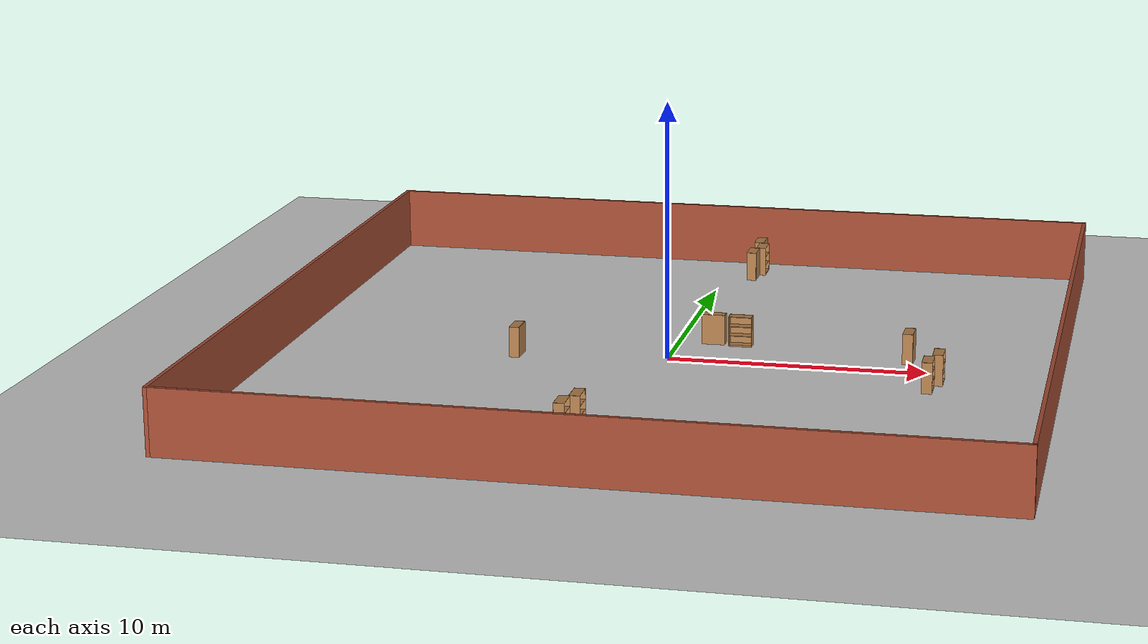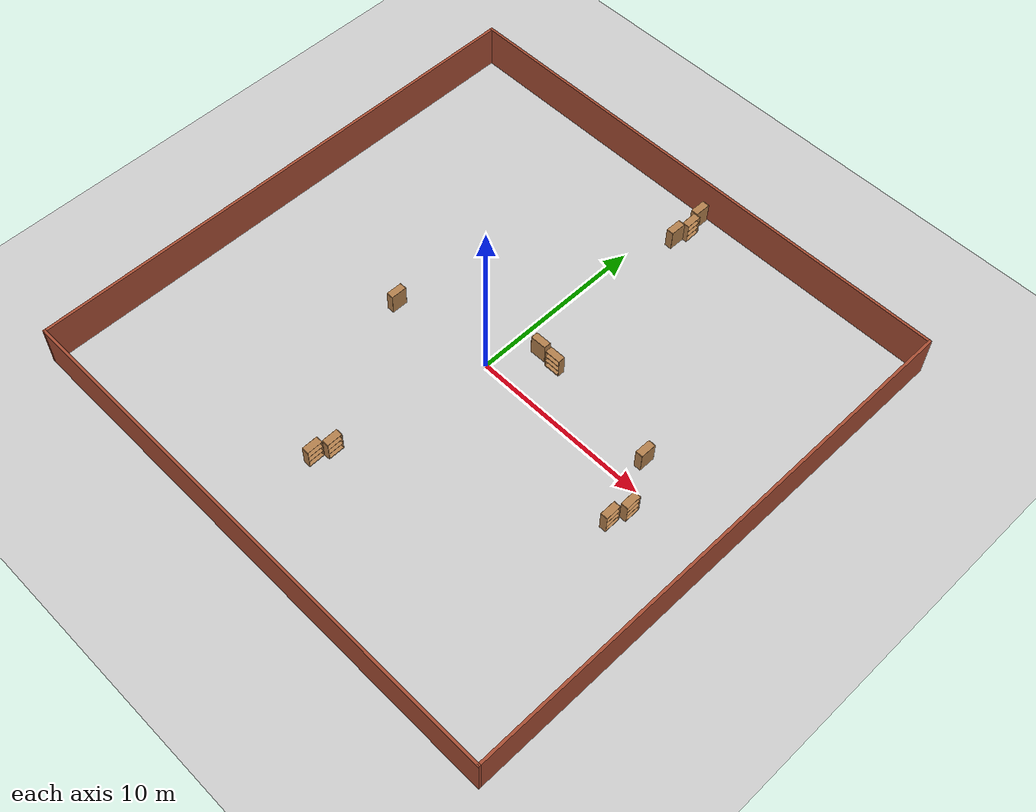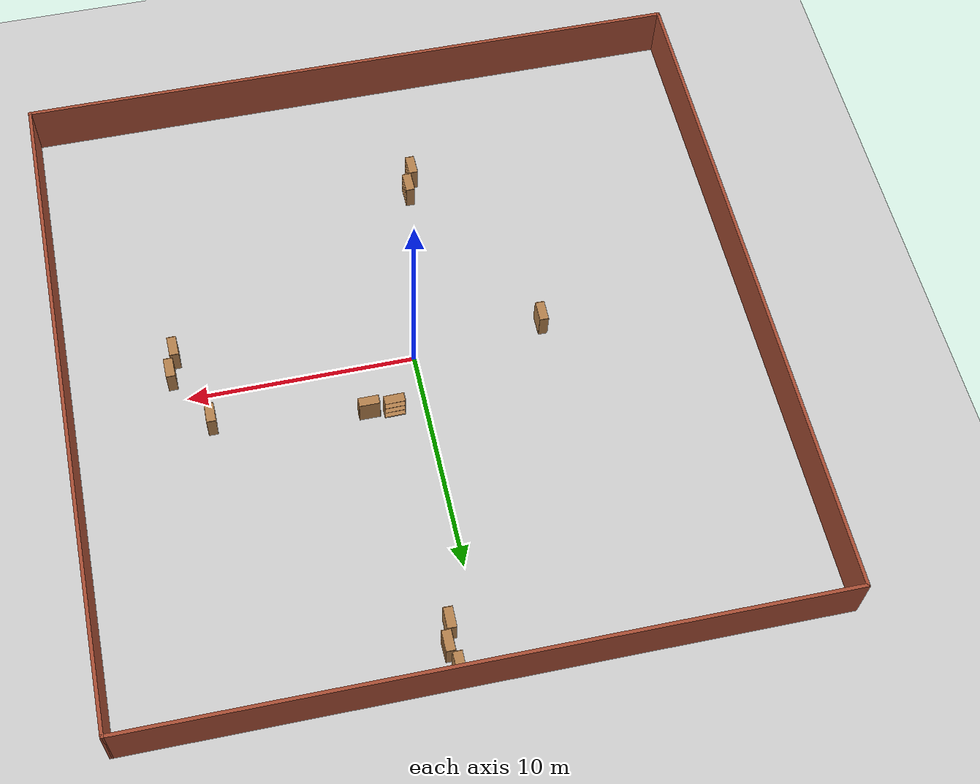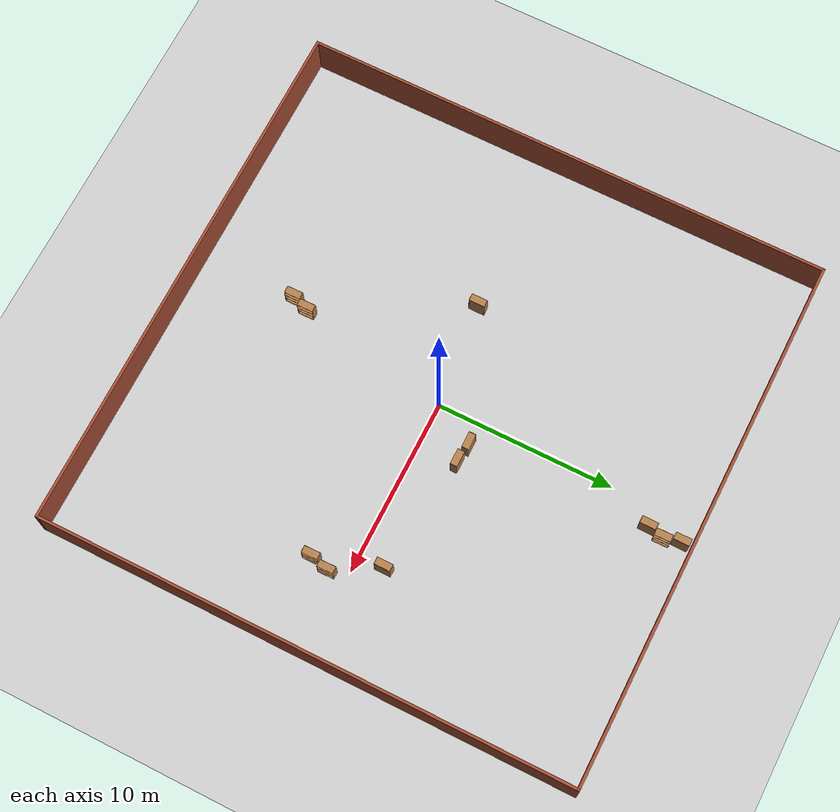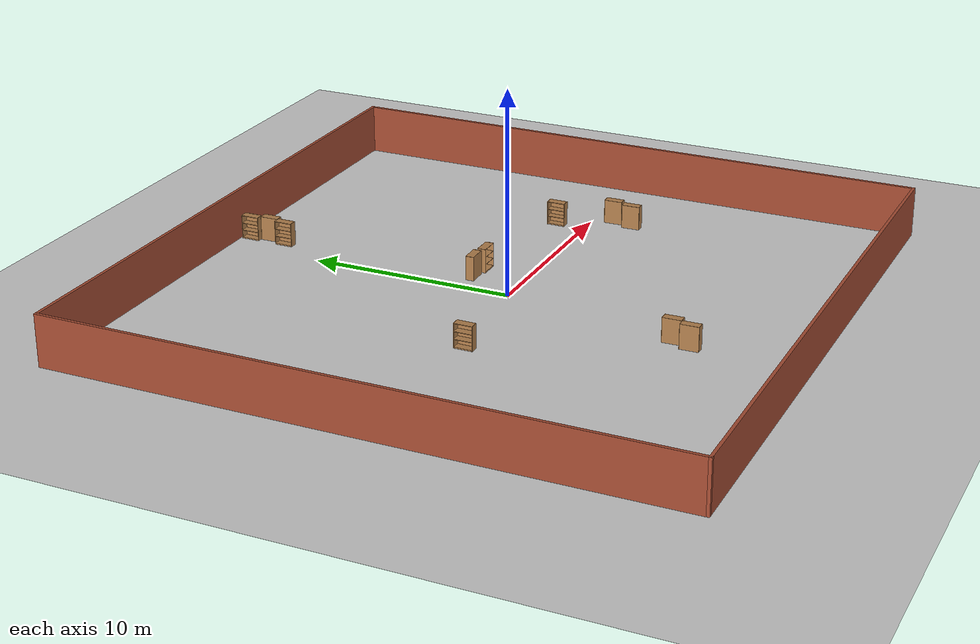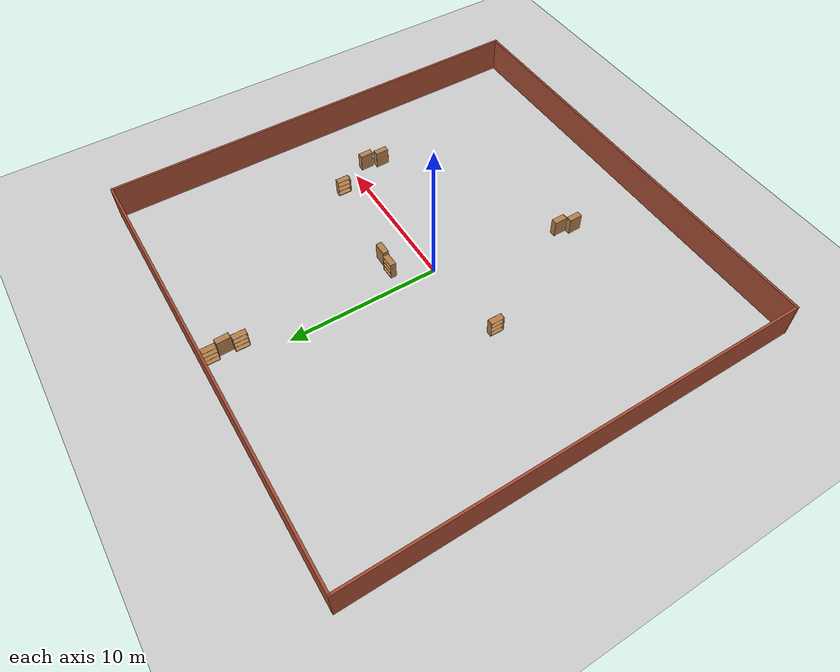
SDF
<sdf version="1.6">
 <world name="default">
  <model name="ground_plane">
   <static>1</static>
   <link name="link">
    <collision name="collision">
     <geometry><plane><normal>0 0 1</normal><size>100 100</size></plane></geometry>
     <surface>
      <contact><collide_bitmask>65535</collide_bitmask></contact>
      <friction><ode><mu>100</mu><mu2>50</mu2></ode></friction>
     </surface>
    </collision>
    <visual name="visual">
     <cast_shadows>0</cast_shadows>
     <geometry><plane><normal>0 0 1</normal><size>100 100</size></plane></geometry>
     <material>
      <script><uri>file://media/materials/scripts/gazebo.material</uri><name>Gazebo/Grey</name></script>
     </material>
    </visual>
   </link>
  </model>
  <model name="30x30_0">
   <link name="Wall_0">
    <collision name="Wall_0_Collision">
     <geometry><box><size>30.15 0.15 2.5</size></box></geometry>
     <pose>0 0 1.25 0 -0 0</pose>
    </collision>
    <visual name="Wall_0_Visual">
     <pose>0 0 1.25 0 -0 0</pose>
     <geometry><box><size>30.15 0.15 2.5</size></box></geometry>
     <material>
      <script><uri>file://media/materials/scripts/gazebo.material</uri><name>Gazebo/Bricks</name></script>
      <ambient>1 1 1 1</ambient>
     </material>
     <meta><layer>0</layer></meta>
    </visual>
    <pose>-15 0 0 0 -0 1.5708</pose>
   </link>
   <link name="Wall_1">
    <collision name="Wall_1_Collision">
     <geometry><box><size>30.15 0.15 2.5</size></box></geometry>
     <pose>0 0 1.25 0 -0 0</pose>
    </collision>
    <visual name="Wall_1_Visual">
     <pose>0 0 1.25 0 -0 0</pose>
     <geometry><box><size>30.15 0.15 2.5</size></box></geometry>
     <material>
      <script><uri>file://media/materials/scripts/gazebo.material</uri><name>Gazebo/Bricks</name></script>
      <ambient>1 1 1 1</ambient>
     </material>
     <meta><layer>0</layer></meta>
    </visual>
    <pose>0 15 0 0 -0 0</pose>
   </link>
   <link name="Wall_2">
    <collision name="Wall_2_Collision">
     <geometry><box><size>30.15 0.15 2.5</size></box></geometry>
     <pose>0 0 1.25 0 -0 0</pose>
    </collision>
    <visual name="Wall_2_Visual">
     <pose>0 0 1.25 0 -0 0</pose>
     <geometry><box><size>30.15 0.15 2.5</size></box></geometry>
     <material>
      <script><uri>file://media/materials/scripts/gazebo.material</uri><name>Gazebo/Bricks</name></script>
      <ambient>1 1 1 1</ambient>
     </material>
     <meta><layer>0</layer></meta>
    </visual>
    <pose>15 0 0 0 -0 -1.5708</pose>
   </link>
   <link name="Wall_3">
    <collision name="Wall_3_Collision">
     <geometry><box><size>30.15 0.15 2.5</size></box></geometry>
     <pose>0 0 1.25 0 -0 0</pose>
    </collision>
    <visual name="Wall_3_Visual">
     <pose>0 0 1.25 0 -0 0</pose>
     <geometry><box><size>30.15 0.15 2.5</size></box></geometry>
     <material>
      <script><uri>file://media/materials/scripts/gazebo.material</uri><name>Gazebo/Bricks</name></script>
      <ambient>1 1 1 1</ambient>
     </material>
     <meta><layer>0</layer></meta>
    </visual>
    <pose>0 -15 0 0 -0 3.14159</pose>
   </link>
   <static>1</static>
  </model>
  <model name="bookshelf_clone_0_clone_clone_2_clone_2_clone_3_clone_clone_clone_2_clone_0">
   <static>1</static>
   <link name="link">
    <inertial><mass>1</mass></inertial>
    <collision name="back">
     <pose>0 0.005 0.6 0 -0 0</pose>
     <geometry><box><size>0.9 0.01 1.2</size></box></geometry>
    </collision>
    <visual name="visual1">
     <pose>0 0.005 0.6 0 -0 0</pose>
     <geometry><box><size>0.9 0.01 1.2</size></box></geometry>
     <material>
      <script><uri>file://media/materials/scripts/gazebo.material</uri><name>Gazebo/Wood</name></script>
     </material>
    </visual>
    <collision name="left_side">
     <pose>0.45 -0.195 0.6 0 -0 0</pose>
     <geometry><box><size>0.02 0.4 1.2</size></box></geometry>
    </collision>
    <visual name="visual2">
     <pose>0.45 -0.195 0.6 0 -0 0</pose>
     <geometry><box><size>0.02 0.4 1.2</size></box></geometry>
     <material>
      <script><uri>file://media/materials/scripts/gazebo.material</uri><name>Gazebo/Wood</name></script>
     </material>
    </visual>
    <collision name="right_side">
     <pose>-0.45 -0.195 0.6 0 -0 0</pose>
     <geometry><box><size>0.02 0.4 1.2</size></box></geometry>
    </collision>
    <visual name="visual3">
     <pose>-0.45 -0.195 0.6 0 -0 0</pose>
     <geometry><box><size>0.02 0.4 1.2</size></box></geometry>
     <material>
      <script><uri>file://media/materials/scripts/gazebo.material</uri><name>Gazebo/Wood</name></script>
     </material>
    </visual>
    <collision name="bottom">
     <pose>0 -0.195 0.03 0 -0 0</pose>
     <geometry><box><size>0.88 0.4 0.06</size></box></geometry>
    </collision>
    <visual name="visual4">
     <pose>0 -0.195 0.03 0 -0 0</pose>
     <geometry><box><size>0.88 0.4 0.06</size></box></geometry>
     <material>
      <script><uri>file://media/materials/scripts/gazebo.material</uri><name>Gazebo/Wood</name></script>
     </material>
    </visual>
    <collision name="top">
     <pose>0 -0.195 1.19 0 -0 0</pose>
     <geometry><box><size>0.88 0.4 0.02</size></box></geometry>
    </collision>
    <visual name="visual5">
     <pose>0 -0.195 1.19 0 -0 0</pose>
     <geometry><box><size>0.88 0.4 0.02</size></box></geometry>
     <material>
      <script><uri>file://media/materials/scripts/gazebo.material</uri><name>Gazebo/Wood</name></script>
     </material>
    </visual>
    <collision name="low_shelf">
     <pose>0 -0.195 0.43 0 -0 0</pose>
     <geometry><box><size>0.88 0.4 0.02</size></box></geometry>
    </collision>
    <visual name="visual6">
     <pose>0 -0.195 0.43 0 -0 0</pose>
     <geometry><box><size>0.88 0.4 0.02</size></box></geometry>
     <material>
      <script><uri>file://media/materials/scripts/gazebo.material</uri><name>Gazebo/Wood</name></script>
     </material>
    </visual>
    <collision name="high_shelf">
     <pose>0 -0.195 0.8 0 -0 0</pose>
     <geometry><box><size>0.88 0.4 0.02</size></box></geometry>
    </collision>
    <visual name="visual7">
     <pose>0 -0.195 0.8 0 -0 0</pose>
     <geometry><box><size>0.88 0.4 0.02</size></box></geometry>
     <material>
      <script><uri>file://media/materials/scripts/gazebo.material</uri><name>Gazebo/Wood</name></script>
     </material>
    </visual>
   </link>
   <pose>10.3381 -1.05473 0 0 -0 1.58577</pose>
  </model>
  <model name="bookshelf_clone_0_clone_clone_2_clone_2_clone_3_clone_clone_clone_2_clone_1">
   <static>1</static>
   <link name="link">
    <inertial><mass>1</mass></inertial>
    <collision name="back">
     <pose>0 0.005 0.6 0 -0 0</pose>
     <geometry><box><size>0.9 0.01 1.2</size></box></geometry>
    </collision>
    <visual name="visual1">
     <pose>0 0.005 0.6 0 -0 0</pose>
     <geometry><box><size>0.9 0.01 1.2</size></box></geometry>
     <material>
      <script><uri>file://media/materials/scripts/gazebo.material</uri><name>Gazebo/Wood</name></script>
     </material>
    </visual>
    <collision name="left_side">
     <pose>0.45 -0.195 0.6 0 -0 0</pose>
     <geometry><box><size>0.02 0.4 1.2</size></box></geometry>
    </collision>
    <visual name="visual2">
     <pose>0.45 -0.195 0.6 0 -0 0</pose>
     <geometry><box><size>0.02 0.4 1.2</size></box></geometry>
     <material>
      <script><uri>file://media/materials/scripts/gazebo.material</uri><name>Gazebo/Wood</name></script>
     </material>
    </visual>
    <collision name="right_side">
     <pose>-0.45 -0.195 0.6 0 -0 0</pose>
     <geometry><box><size>0.02 0.4 1.2</size></box></geometry>
    </collision>
    <visual name="visual3">
     <pose>-0.45 -0.195 0.6 0 -0 0</pose>
     <geometry><box><size>0.02 0.4 1.2</size></box></geometry>
     <material>
      <script><uri>file://media/materials/scripts/gazebo.material</uri><name>Gazebo/Wood</name></script>
     </material>
    </visual>
    <collision name="bottom">
     <pose>0 -0.195 0.03 0 -0 0</pose>
     <geometry><box><size>0.88 0.4 0.06</size></box></geometry>
    </collision>
    <visual name="visual4">
     <pose>0 -0.195 0.03 0 -0 0</pose>
     <geometry><box><size>0.88 0.4 0.06</size></box></geometry>
     <material>
      <script><uri>file://media/materials/scripts/gazebo.material</uri><name>Gazebo/Wood</name></script>
     </material>
    </visual>
    <collision name="top">
     <pose>0 -0.195 1.19 0 -0 0</pose>
     <geometry><box><size>0.88 0.4 0.02</size></box></geometry>
    </collision>
    <visual name="visual5">
     <pose>0 -0.195 1.19 0 -0 0</pose>
     <geometry><box><size>0.88 0.4 0.02</size></box></geometry>
     <material>
      <script><uri>file://media/materials/scripts/gazebo.material</uri><name>Gazebo/Wood</name></script>
     </material>
    </visual>
    <collision name="low_shelf">
     <pose>0 -0.195 0.43 0 -0 0</pose>
     <geometry><box><size>0.88 0.4 0.02</size></box></geometry>
    </collision>
    <visual name="visual6">
     <pose>0 -0.195 0.43 0 -0 0</pose>
     <geometry><box><size>0.88 0.4 0.02</size></box></geometry>
     <material>
      <script><uri>file://media/materials/scripts/gazebo.material</uri><name>Gazebo/Wood</name></script>
     </material>
    </visual>
    <collision name="high_shelf">
     <pose>0 -0.195 0.8 0 -0 0</pose>
     <geometry><box><size>0.88 0.4 0.02</size></box></geometry>
    </collision>
    <visual name="visual7">
     <pose>0 -0.195 0.8 0 -0 0</pose>
     <geometry><box><size>0.88 0.4 0.02</size></box></geometry>
     <material>
      <script><uri>file://media/materials/scripts/gazebo.material</uri><name>Gazebo/Wood</name></script>
     </material>
    </visual>
   </link>
   <pose>10.0552 -2.09607 0 0 -0 1.58577</pose>
  </model>
  <model name="bookshelf_clone_0_clone_clone_2_clone_2_clone_3_clone_clone_2_clone">
   <static>1</static>
   <link name="link">
    <inertial><mass>1</mass></inertial>
    <collision name="back">
     <pose>0 0.005 0.6 0 -0 0</pose>
     <geometry><box><size>0.9 0.01 1.2</size></box></geometry>
    </collision>
    <visual name="visual1">
     <pose>0 0.005 0.6 0 -0 0</pose>
     <geometry><box><size>0.9 0.01 1.2</size></box></geometry>
     <material>
      <script><uri>file://media/materials/scripts/gazebo.material</uri><name>Gazebo/Wood</name></script>
     </material>
    </visual>
    <collision name="left_side">
     <pose>0.45 -0.195 0.6 0 -0 0</pose>
     <geometry><box><size>0.02 0.4 1.2</size></box></geometry>
    </collision>
    <visual name="visual2">
     <pose>0.45 -0.195 0.6 0 -0 0</pose>
     <geometry><box><size>0.02 0.4 1.2</size></box></geometry>
     <material>
      <script><uri>file://media/materials/scripts/gazebo.material</uri><name>Gazebo/Wood</name></script>
     </material>
    </visual>
    <collision name="right_side">
     <pose>-0.45 -0.195 0.6 0 -0 0</pose>
     <geometry><box><size>0.02 0.4 1.2</size></box></geometry>
    </collision>
    <visual name="visual3">
     <pose>-0.45 -0.195 0.6 0 -0 0</pose>
     <geometry><box><size>0.02 0.4 1.2</size></box></geometry>
     <material>
      <script><uri>file://media/materials/scripts/gazebo.material</uri><name>Gazebo/Wood</name></script>
     </material>
    </visual>
    <collision name="bottom">
     <pose>0 -0.195 0.03 0 -0 0</pose>
     <geometry><box><size>0.88 0.4 0.06</size></box></geometry>
    </collision>
    <visual name="visual4">
     <pose>0 -0.195 0.03 0 -0 0</pose>
     <geometry><box><size>0.88 0.4 0.06</size></box></geometry>
     <material>
      <script><uri>file://media/materials/scripts/gazebo.material</uri><name>Gazebo/Wood</name></script>
     </material>
    </visual>
    <collision name="top">
     <pose>0 -0.195 1.19 0 -0 0</pose>
     <geometry><box><size>0.88 0.4 0.02</size></box></geometry>
    </collision>
    <visual name="visual5">
     <pose>0 -0.195 1.19 0 -0 0</pose>
     <geometry><box><size>0.88 0.4 0.02</size></box></geometry>
     <material>
      <script><uri>file://media/materials/scripts/gazebo.material</uri><name>Gazebo/Wood</name></script>
     </material>
    </visual>
    <collision name="low_shelf">
     <pose>0 -0.195 0.43 0 -0 0</pose>
     <geometry><box><size>0.88 0.4 0.02</size></box></geometry>
    </collision>
    <visual name="visual6">
     <pose>0 -0.195 0.43 0 -0 0</pose>
     <geometry><box><size>0.88 0.4 0.02</size></box></geometry>
     <material>
      <script><uri>file://media/materials/scripts/gazebo.material</uri><name>Gazebo/Wood</name></script>
     </material>
    </visual>
    <collision name="high_shelf">
     <pose>0 -0.195 0.8 0 -0 0</pose>
     <geometry><box><size>0.88 0.4 0.02</size></box></geometry>
    </collision>
    <visual name="visual7">
     <pose>0 -0.195 0.8 0 -0 0</pose>
     <geometry><box><size>0.88 0.4 0.02</size></box></geometry>
     <material>
      <script><uri>file://media/materials/scripts/gazebo.material</uri><name>Gazebo/Wood</name></script>
     </material>
    </visual>
   </link>
   <pose>9.32893 1.46223 0 0 0 -1.58271</pose>
  </model>
  <model name="bookshelf_clone_0_clone_clone_2_clone_2_clone_3_clone_clone_1_clone_0">
   <static>1</static>
   <link name="link">
    <inertial><mass>1</mass></inertial>
    <collision name="back">
     <pose>0 0.005 0.6 0 -0 0</pose>
     <geometry><box><size>0.9 0.01 1.2</size></box></geometry>
    </collision>
    <visual name="visual1">
     <pose>0 0.005 0.6 0 -0 0</pose>
     <geometry><box><size>0.9 0.01 1.2</size></box></geometry>
     <material>
      <script><uri>file://media/materials/scripts/gazebo.material</uri><name>Gazebo/Wood</name></script>
     </material>
    </visual>
    <collision name="left_side">
     <pose>0.45 -0.195 0.6 0 -0 0</pose>
     <geometry><box><size>0.02 0.4 1.2</size></box></geometry>
    </collision>
    <visual name="visual2">
     <pose>0.45 -0.195 0.6 0 -0 0</pose>
     <geometry><box><size>0.02 0.4 1.2</size></box></geometry>
     <material>
      <script><uri>file://media/materials/scripts/gazebo.material</uri><name>Gazebo/Wood</name></script>
     </material>
    </visual>
    <collision name="right_side">
     <pose>-0.45 -0.195 0.6 0 -0 0</pose>
     <geometry><box><size>0.02 0.4 1.2</size></box></geometry>
    </collision>
    <visual name="visual3">
     <pose>-0.45 -0.195 0.6 0 -0 0</pose>
     <geometry><box><size>0.02 0.4 1.2</size></box></geometry>
     <material>
      <script><uri>file://media/materials/scripts/gazebo.material</uri><name>Gazebo/Wood</name></script>
     </material>
    </visual>
    <collision name="bottom">
     <pose>0 -0.195 0.03 0 -0 0</pose>
     <geometry><box><size>0.88 0.4 0.06</size></box></geometry>
    </collision>
    <visual name="visual4">
     <pose>0 -0.195 0.03 0 -0 0</pose>
     <geometry><box><size>0.88 0.4 0.06</size></box></geometry>
     <material>
      <script><uri>file://media/materials/scripts/gazebo.material</uri><name>Gazebo/Wood</name></script>
     </material>
    </visual>
    <collision name="top">
     <pose>0 -0.195 1.19 0 -0 0</pose>
     <geometry><box><size>0.88 0.4 0.02</size></box></geometry>
    </collision>
    <visual name="visual5">
     <pose>0 -0.195 1.19 0 -0 0</pose>
     <geometry><box><size>0.88 0.4 0.02</size></box></geometry>
     <material>
      <script><uri>file://media/materials/scripts/gazebo.material</uri><name>Gazebo/Wood</name></script>
     </material>
    </visual>
    <collision name="low_shelf">
     <pose>0 -0.195 0.43 0 -0 0</pose>
     <geometry><box><size>0.88 0.4 0.02</size></box></geometry>
    </collision>
    <visual name="visual6">
     <pose>0 -0.195 0.43 0 -0 0</pose>
     <geometry><box><size>0.88 0.4 0.02</size></box></geometry>
     <material>
      <script><uri>file://media/materials/scripts/gazebo.material</uri><name>Gazebo/Wood</name></script>
     </material>
    </visual>
    <collision name="high_shelf">
     <pose>0 -0.195 0.8 0 -0 0</pose>
     <geometry><box><size>0.88 0.4 0.02</size></box></geometry>
    </collision>
    <visual name="visual7">
     <pose>0 -0.195 0.8 0 -0 0</pose>
     <geometry><box><size>0.88 0.4 0.02</size></box></geometry>
     <material>
      <script><uri>file://media/materials/scripts/gazebo.material</uri><name>Gazebo/Wood</name></script>
     </material>
    </visual>
   </link>
   <pose>1.36464 14.378 0 0 0 -1.58271</pose>
  </model>
  <model name="bookshelf_clone_0_clone_clone_2_clone_2_clone_3_clone_clone_clone_1_clone">
   <static>1</static>
   <link name="link">
    <inertial><mass>1</mass></inertial>
    <collision name="back">
     <pose>0 0.005 0.6 0 -0 0</pose>
     <geometry><box><size>0.9 0.01 1.2</size></box></geometry>
    </collision>
    <visual name="visual1">
     <pose>0 0.005 0.6 0 -0 0</pose>
     <geometry><box><size>0.9 0.01 1.2</size></box></geometry>
     <material>
      <script><uri>file://media/materials/scripts/gazebo.material</uri><name>Gazebo/Wood</name></script>
     </material>
    </visual>
    <collision name="left_side">
     <pose>0.45 -0.195 0.6 0 -0 0</pose>
     <geometry><box><size>0.02 0.4 1.2</size></box></geometry>
    </collision>
    <visual name="visual2">
     <pose>0.45 -0.195 0.6 0 -0 0</pose>
     <geometry><box><size>0.02 0.4 1.2</size></box></geometry>
     <material>
      <script><uri>file://media/materials/scripts/gazebo.material</uri><name>Gazebo/Wood</name></script>
     </material>
    </visual>
    <collision name="right_side">
     <pose>-0.45 -0.195 0.6 0 -0 0</pose>
     <geometry><box><size>0.02 0.4 1.2</size></box></geometry>
    </collision>
    <visual name="visual3">
     <pose>-0.45 -0.195 0.6 0 -0 0</pose>
     <geometry><box><size>0.02 0.4 1.2</size></box></geometry>
     <material>
      <script><uri>file://media/materials/scripts/gazebo.material</uri><name>Gazebo/Wood</name></script>
     </material>
    </visual>
    <collision name="bottom">
     <pose>0 -0.195 0.03 0 -0 0</pose>
     <geometry><box><size>0.88 0.4 0.06</size></box></geometry>
    </collision>
    <visual name="visual4">
     <pose>0 -0.195 0.03 0 -0 0</pose>
     <geometry><box><size>0.88 0.4 0.06</size></box></geometry>
     <material>
      <script><uri>file://media/materials/scripts/gazebo.material</uri><name>Gazebo/Wood</name></script>
     </material>
    </visual>
    <collision name="top">
     <pose>0 -0.195 1.19 0 -0 0</pose>
     <geometry><box><size>0.88 0.4 0.02</size></box></geometry>
    </collision>
    <visual name="visual5">
     <pose>0 -0.195 1.19 0 -0 0</pose>
     <geometry><box><size>0.88 0.4 0.02</size></box></geometry>
     <material>
      <script><uri>file://media/materials/scripts/gazebo.material</uri><name>Gazebo/Wood</name></script>
     </material>
    </visual>
    <collision name="low_shelf">
     <pose>0 -0.195 0.43 0 -0 0</pose>
     <geometry><box><size>0.88 0.4 0.02</size></box></geometry>
    </collision>
    <visual name="visual6">
     <pose>0 -0.195 0.43 0 -0 0</pose>
     <geometry><box><size>0.88 0.4 0.02</size></box></geometry>
     <material>
      <script><uri>file://media/materials/scripts/gazebo.material</uri><name>Gazebo/Wood</name></script>
     </material>
    </visual>
    <collision name="high_shelf">
     <pose>0 -0.195 0.8 0 -0 0</pose>
     <geometry><box><size>0.88 0.4 0.02</size></box></geometry>
    </collision>
    <visual name="visual7">
     <pose>0 -0.195 0.8 0 -0 0</pose>
     <geometry><box><size>0.88 0.4 0.02</size></box></geometry>
     <material>
      <script><uri>file://media/materials/scripts/gazebo.material</uri><name>Gazebo/Wood</name></script>
     </material>
    </visual>
   </link>
   <pose>1.21519 13.427 0 0 -0 1.58577</pose>
  </model>
  <model name="bookshelf_clone_0_clone_clone_2_clone_2_clone_3_clone_clone_2_clone_0">
   <static>1</static>
   <link name="link">
    <inertial><mass>1</mass></inertial>
    <collision name="back">
     <pose>0 0.005 0.6 0 -0 0</pose>
     <geometry><box><size>0.9 0.01 1.2</size></box></geometry>
    </collision>
    <visual name="visual1">
     <pose>0 0.005 0.6 0 -0 0</pose>
     <geometry><box><size>0.9 0.01 1.2</size></box></geometry>
     <material>
      <script><uri>file://media/materials/scripts/gazebo.material</uri><name>Gazebo/Wood</name></script>
     </material>
    </visual>
    <collision name="left_side">
     <pose>0.45 -0.195 0.6 0 -0 0</pose>
     <geometry><box><size>0.02 0.4 1.2</size></box></geometry>
    </collision>
    <visual name="visual2">
     <pose>0.45 -0.195 0.6 0 -0 0</pose>
     <geometry><box><size>0.02 0.4 1.2</size></box></geometry>
     <material>
      <script><uri>file://media/materials/scripts/gazebo.material</uri><name>Gazebo/Wood</name></script>
     </material>
    </visual>
    <collision name="right_side">
     <pose>-0.45 -0.195 0.6 0 -0 0</pose>
     <geometry><box><size>0.02 0.4 1.2</size></box></geometry>
    </collision>
    <visual name="visual3">
     <pose>-0.45 -0.195 0.6 0 -0 0</pose>
     <geometry><box><size>0.02 0.4 1.2</size></box></geometry>
     <material>
      <script><uri>file://media/materials/scripts/gazebo.material</uri><name>Gazebo/Wood</name></script>
     </material>
    </visual>
    <collision name="bottom">
     <pose>0 -0.195 0.03 0 -0 0</pose>
     <geometry><box><size>0.88 0.4 0.06</size></box></geometry>
    </collision>
    <visual name="visual4">
     <pose>0 -0.195 0.03 0 -0 0</pose>
     <geometry><box><size>0.88 0.4 0.06</size></box></geometry>
     <material>
      <script><uri>file://media/materials/scripts/gazebo.material</uri><name>Gazebo/Wood</name></script>
     </material>
    </visual>
    <collision name="top">
     <pose>0 -0.195 1.19 0 -0 0</pose>
     <geometry><box><size>0.88 0.4 0.02</size></box></geometry>
    </collision>
    <visual name="visual5">
     <pose>0 -0.195 1.19 0 -0 0</pose>
     <geometry><box><size>0.88 0.4 0.02</size></box></geometry>
     <material>
      <script><uri>file://media/materials/scripts/gazebo.material</uri><name>Gazebo/Wood</name></script>
     </material>
    </visual>
    <collision name="low_shelf">
     <pose>0 -0.195 0.43 0 -0 0</pose>
     <geometry><box><size>0.88 0.4 0.02</size></box></geometry>
    </collision>
    <visual name="visual6">
     <pose>0 -0.195 0.43 0 -0 0</pose>
     <geometry><box><size>0.88 0.4 0.02</size></box></geometry>
     <material>
      <script><uri>file://media/materials/scripts/gazebo.material</uri><name>Gazebo/Wood</name></script>
     </material>
    </visual>
    <collision name="high_shelf">
     <pose>0 -0.195 0.8 0 -0 0</pose>
     <geometry><box><size>0.88 0.4 0.02</size></box></geometry>
    </collision>
    <visual name="visual7">
     <pose>0 -0.195 0.8 0 -0 0</pose>
     <geometry><box><size>0.88 0.4 0.02</size></box></geometry>
     <material>
      <script><uri>file://media/materials/scripts/gazebo.material</uri><name>Gazebo/Wood</name></script>
     </material>
    </visual>
   </link>
   <pose>1.3506 12.5033 0 0 0 -1.58271</pose>
  </model>
  <model name="bookshelf_clone_clone_clone_0_clone_0_clone_3_clone_0_clone">
   <static>1</static>
   <link name="link">
    <inertial><mass>1</mass></inertial>
    <collision name="back">
     <pose>0 0.005 0.6 0 -0 0</pose>
     <geometry><box><size>0.9 0.01 1.2</size></box></geometry>
    </collision>
    <visual name="visual1">
     <pose>0 0.005 0.6 0 -0 0</pose>
     <geometry><box><size>0.9 0.01 1.2</size></box></geometry>
     <material>
      <script><uri>file://media/materials/scripts/gazebo.material</uri><name>Gazebo/Wood</name></script>
     </material>
    </visual>
    <collision name="left_side">
     <pose>0.45 -0.195 0.6 0 -0 0</pose>
     <geometry><box><size>0.02 0.4 1.2</size></box></geometry>
    </collision>
    <visual name="visual2">
     <pose>0.45 -0.195 0.6 0 -0 0</pose>
     <geometry><box><size>0.02 0.4 1.2</size></box></geometry>
     <material>
      <script><uri>file://media/materials/scripts/gazebo.material</uri><name>Gazebo/Wood</name></script>
     </material>
    </visual>
    <collision name="right_side">
     <pose>-0.45 -0.195 0.6 0 -0 0</pose>
     <geometry><box><size>0.02 0.4 1.2</size></box></geometry>
    </collision>
    <visual name="visual3">
     <pose>-0.45 -0.195 0.6 0 -0 0</pose>
     <geometry><box><size>0.02 0.4 1.2</size></box></geometry>
     <material>
      <script><uri>file://media/materials/scripts/gazebo.material</uri><name>Gazebo/Wood</name></script>
     </material>
    </visual>
    <collision name="bottom">
     <pose>0 -0.195 0.03 0 -0 0</pose>
     <geometry><box><size>0.88 0.4 0.06</size></box></geometry>
    </collision>
    <visual name="visual4">
     <pose>0 -0.195 0.03 0 -0 0</pose>
     <geometry><box><size>0.88 0.4 0.06</size></box></geometry>
     <material>
      <script><uri>file://media/materials/scripts/gazebo.material</uri><name>Gazebo/Wood</name></script>
     </material>
    </visual>
    <collision name="top">
     <pose>0 -0.195 1.19 0 -0 0</pose>
     <geometry><box><size>0.88 0.4 0.02</size></box></geometry>
    </collision>
    <visual name="visual5">
     <pose>0 -0.195 1.19 0 -0 0</pose>
     <geometry><box><size>0.88 0.4 0.02</size></box></geometry>
     <material>
      <script><uri>file://media/materials/scripts/gazebo.material</uri><name>Gazebo/Wood</name></script>
     </material>
    </visual>
    <collision name="low_shelf">
     <pose>0 -0.195 0.43 0 -0 0</pose>
     <geometry><box><size>0.88 0.4 0.02</size></box></geometry>
    </collision>
    <visual name="visual6">
     <pose>0 -0.195 0.43 0 -0 0</pose>
     <geometry><box><size>0.88 0.4 0.02</size></box></geometry>
     <material>
      <script><uri>file://media/materials/scripts/gazebo.material</uri><name>Gazebo/Wood</name></script>
     </material>
    </visual>
    <collision name="high_shelf">
     <pose>0 -0.195 0.8 0 -0 0</pose>
     <geometry><box><size>0.88 0.4 0.02</size></box></geometry>
    </collision>
    <visual name="visual7">
     <pose>0 -0.195 0.8 0 -0 0</pose>
     <geometry><box><size>0.88 0.4 0.02</size></box></geometry>
     <material>
      <script><uri>file://media/materials/scripts/gazebo.material</uri><name>Gazebo/Wood</name></script>
     </material>
    </visual>
   </link>
   <pose>2.45068 2.47195 0 0 -0 0</pose>
  </model>
  <model name="bookshelf_clone_clone_clone_0_clone_0_clone_3_clone_0_clone_clone">
   <static>1</static>
   <link name="link">
    <inertial><mass>1</mass></inertial>
    <collision name="back">
     <pose>0 0.005 0.6 0 -0 0</pose>
     <geometry><box><size>0.9 0.01 1.2</size></box></geometry>
    </collision>
    <visual name="visual1">
     <pose>0 0.005 0.6 0 -0 0</pose>
     <geometry><box><size>0.9 0.01 1.2</size></box></geometry>
     <material>
      <script><uri>file://media/materials/scripts/gazebo.material</uri><name>Gazebo/Wood</name></script>
     </material>
    </visual>
    <collision name="left_side">
     <pose>0.45 -0.195 0.6 0 -0 0</pose>
     <geometry><box><size>0.02 0.4 1.2</size></box></geometry>
    </collision>
    <visual name="visual2">
     <pose>0.45 -0.195 0.6 0 -0 0</pose>
     <geometry><box><size>0.02 0.4 1.2</size></box></geometry>
     <material>
      <script><uri>file://media/materials/scripts/gazebo.material</uri><name>Gazebo/Wood</name></script>
     </material>
    </visual>
    <collision name="right_side">
     <pose>-0.45 -0.195 0.6 0 -0 0</pose>
     <geometry><box><size>0.02 0.4 1.2</size></box></geometry>
    </collision>
    <visual name="visual3">
     <pose>-0.45 -0.195 0.6 0 -0 0</pose>
     <geometry><box><size>0.02 0.4 1.2</size></box></geometry>
     <material>
      <script><uri>file://media/materials/scripts/gazebo.material</uri><name>Gazebo/Wood</name></script>
     </material>
    </visual>
    <collision name="bottom">
     <pose>0 -0.195 0.03 0 -0 0</pose>
     <geometry><box><size>0.88 0.4 0.06</size></box></geometry>
    </collision>
    <visual name="visual4">
     <pose>0 -0.195 0.03 0 -0 0</pose>
     <geometry><box><size>0.88 0.4 0.06</size></box></geometry>
     <material>
      <script><uri>file://media/materials/scripts/gazebo.material</uri><name>Gazebo/Wood</name></script>
     </material>
    </visual>
    <collision name="top">
     <pose>0 -0.195 1.19 0 -0 0</pose>
     <geometry><box><size>0.88 0.4 0.02</size></box></geometry>
    </collision>
    <visual name="visual5">
     <pose>0 -0.195 1.19 0 -0 0</pose>
     <geometry><box><size>0.88 0.4 0.02</size></box></geometry>
     <material>
      <script><uri>file://media/materials/scripts/gazebo.material</uri><name>Gazebo/Wood</name></script>
     </material>
    </visual>
    <collision name="low_shelf">
     <pose>0 -0.195 0.43 0 -0 0</pose>
     <geometry><box><size>0.88 0.4 0.02</size></box></geometry>
    </collision>
    <visual name="visual6">
     <pose>0 -0.195 0.43 0 -0 0</pose>
     <geometry><box><size>0.88 0.4 0.02</size></box></geometry>
     <material>
      <script><uri>file://media/materials/scripts/gazebo.material</uri><name>Gazebo/Wood</name></script>
     </material>
    </visual>
    <collision name="high_shelf">
     <pose>0 -0.195 0.8 0 -0 0</pose>
     <geometry><box><size>0.88 0.4 0.02</size></box></geometry>
    </collision>
    <visual name="visual7">
     <pose>0 -0.195 0.8 0 -0 0</pose>
     <geometry><box><size>0.88 0.4 0.02</size></box></geometry>
     <material>
      <script><uri>file://media/materials/scripts/gazebo.material</uri><name>Gazebo/Wood</name></script>
     </material>
    </visual>
   </link>
   <pose>1.37087 2.20296 0 0 0 -3.1245</pose>
  </model>
  <model name="bookshelf_clone_0_clone_clone_2_clone_2_clone_3_clone_clone_2_clone_0_clone_0">
   <static>1</static>
   <link name="link">
    <inertial><mass>1</mass></inertial>
    <collision name="back">
     <pose>0 0.005 0.6 0 -0 0</pose>
     <geometry><box><size>0.9 0.01 1.2</size></box></geometry>
    </collision>
    <visual name="visual1">
     <pose>0 0.005 0.6 0 -0 0</pose>
     <geometry><box><size>0.9 0.01 1.2</size></box></geometry>
     <material>
      <script><uri>file://media/materials/scripts/gazebo.material</uri><name>Gazebo/Wood</name></script>
     </material>
    </visual>
    <collision name="left_side">
     <pose>0.45 -0.195 0.6 0 -0 0</pose>
     <geometry><box><size>0.02 0.4 1.2</size></box></geometry>
    </collision>
    <visual name="visual2">
     <pose>0.45 -0.195 0.6 0 -0 0</pose>
     <geometry><box><size>0.02 0.4 1.2</size></box></geometry>
     <material>
      <script><uri>file://media/materials/scripts/gazebo.material</uri><name>Gazebo/Wood</name></script>
     </material>
    </visual>
    <collision name="right_side">
     <pose>-0.45 -0.195 0.6 0 -0 0</pose>
     <geometry><box><size>0.02 0.4 1.2</size></box></geometry>
    </collision>
    <visual name="visual3">
     <pose>-0.45 -0.195 0.6 0 -0 0</pose>
     <geometry><box><size>0.02 0.4 1.2</size></box></geometry>
     <material>
      <script><uri>file://media/materials/scripts/gazebo.material</uri><name>Gazebo/Wood</name></script>
     </material>
    </visual>
    <collision name="bottom">
     <pose>0 -0.195 0.03 0 -0 0</pose>
     <geometry><box><size>0.88 0.4 0.06</size></box></geometry>
    </collision>
    <visual name="visual4">
     <pose>0 -0.195 0.03 0 -0 0</pose>
     <geometry><box><size>0.88 0.4 0.06</size></box></geometry>
     <material>
      <script><uri>file://media/materials/scripts/gazebo.material</uri><name>Gazebo/Wood</name></script>
     </material>
    </visual>
    <collision name="top">
     <pose>0 -0.195 1.19 0 -0 0</pose>
     <geometry><box><size>0.88 0.4 0.02</size></box></geometry>
    </collision>
    <visual name="visual5">
     <pose>0 -0.195 1.19 0 -0 0</pose>
     <geometry><box><size>0.88 0.4 0.02</size></box></geometry>
     <material>
      <script><uri>file://media/materials/scripts/gazebo.material</uri><name>Gazebo/Wood</name></script>
     </material>
    </visual>
    <collision name="low_shelf">
     <pose>0 -0.195 0.43 0 -0 0</pose>
     <geometry><box><size>0.88 0.4 0.02</size></box></geometry>
    </collision>
    <visual name="visual6">
     <pose>0 -0.195 0.43 0 -0 0</pose>
     <geometry><box><size>0.88 0.4 0.02</size></box></geometry>
     <material>
      <script><uri>file://media/materials/scripts/gazebo.material</uri><name>Gazebo/Wood</name></script>
     </material>
    </visual>
    <collision name="high_shelf">
     <pose>0 -0.195 0.8 0 -0 0</pose>
     <geometry><box><size>0.88 0.4 0.02</size></box></geometry>
    </collision>
    <visual name="visual7">
     <pose>0 -0.195 0.8 0 -0 0</pose>
     <geometry><box><size>0.88 0.4 0.02</size></box></geometry>
     <material>
      <script><uri>file://media/materials/scripts/gazebo.material</uri><name>Gazebo/Wood</name></script>
     </material>
    </visual>
   </link>
   <pose>-5.62261 -0.615004 0 0 0 -1.58271</pose>
  </model>
  <model name="bookshelf_clone_0_clone_clone_2_clone_2_clone_3_clone_clone_clone_2_clone_1_clone_clone">
   <static>1</static>
   <link name="link">
    <inertial><mass>1</mass></inertial>
    <collision name="back">
     <pose>0 0.005 0.6 0 -0 0</pose>
     <geometry><box><size>0.9 0.01 1.2</size></box></geometry>
    </collision>
    <visual name="visual1">
     <pose>0 0.005 0.6 0 -0 0</pose>
     <geometry><box><size>0.9 0.01 1.2</size></box></geometry>
     <material>
      <script><uri>file://media/materials/scripts/gazebo.material</uri><name>Gazebo/Wood</name></script>
     </material>
    </visual>
    <collision name="left_side">
     <pose>0.45 -0.195 0.6 0 -0 0</pose>
     <geometry><box><size>0.02 0.4 1.2</size></box></geometry>
    </collision>
    <visual name="visual2">
     <pose>0.45 -0.195 0.6 0 -0 0</pose>
     <geometry><box><size>0.02 0.4 1.2</size></box></geometry>
     <material>
      <script><uri>file://media/materials/scripts/gazebo.material</uri><name>Gazebo/Wood</name></script>
     </material>
    </visual>
    <collision name="right_side">
     <pose>-0.45 -0.195 0.6 0 -0 0</pose>
     <geometry><box><size>0.02 0.4 1.2</size></box></geometry>
    </collision>
    <visual name="visual3">
     <pose>-0.45 -0.195 0.6 0 -0 0</pose>
     <geometry><box><size>0.02 0.4 1.2</size></box></geometry>
     <material>
      <script><uri>file://media/materials/scripts/gazebo.material</uri><name>Gazebo/Wood</name></script>
     </material>
    </visual>
    <collision name="bottom">
     <pose>0 -0.195 0.03 0 -0 0</pose>
     <geometry><box><size>0.88 0.4 0.06</size></box></geometry>
    </collision>
    <visual name="visual4">
     <pose>0 -0.195 0.03 0 -0 0</pose>
     <geometry><box><size>0.88 0.4 0.06</size></box></geometry>
     <material>
      <script><uri>file://media/materials/scripts/gazebo.material</uri><name>Gazebo/Wood</name></script>
     </material>
    </visual>
    <collision name="top">
     <pose>0 -0.195 1.19 0 -0 0</pose>
     <geometry><box><size>0.88 0.4 0.02</size></box></geometry>
    </collision>
    <visual name="visual5">
     <pose>0 -0.195 1.19 0 -0 0</pose>
     <geometry><box><size>0.88 0.4 0.02</size></box></geometry>
     <material>
      <script><uri>file://media/materials/scripts/gazebo.material</uri><name>Gazebo/Wood</name></script>
     </material>
    </visual>
    <collision name="low_shelf">
     <pose>0 -0.195 0.43 0 -0 0</pose>
     <geometry><box><size>0.88 0.4 0.02</size></box></geometry>
    </collision>
    <visual name="visual6">
     <pose>0 -0.195 0.43 0 -0 0</pose>
     <geometry><box><size>0.88 0.4 0.02</size></box></geometry>
     <material>
      <script><uri>file://media/materials/scripts/gazebo.material</uri><name>Gazebo/Wood</name></script>
     </material>
    </visual>
    <collision name="high_shelf">
     <pose>0 -0.195 0.8 0 -0 0</pose>
     <geometry><box><size>0.88 0.4 0.02</size></box></geometry>
    </collision>
    <visual name="visual7">
     <pose>0 -0.195 0.8 0 -0 0</pose>
     <geometry><box><size>0.88 0.4 0.02</size></box></geometry>
     <material>
      <script><uri>file://media/materials/scripts/gazebo.material</uri><name>Gazebo/Wood</name></script>
     </material>
    </visual>
   </link>
   <pose>-1.68009 -8.60795 0 0 -0 1.58577</pose>
  </model>
  <model name="bookshelf_clone_0_clone_clone_2_clone_2_clone_3_clone_clone_clone_2_clone_1_clone_clone_0">
   <static>1</static>
   <link name="link">
    <inertial><mass>1</mass></inertial>
    <collision name="back">
     <pose>0 0.005 0.6 0 -0 0</pose>
     <geometry><box><size>0.9 0.01 1.2</size></box></geometry>
    </collision>
    <visual name="visual1">
     <pose>0 0.005 0.6 0 -0 0</pose>
     <geometry><box><size>0.9 0.01 1.2</size></box></geometry>
     <material>
      <script><uri>file://media/materials/scripts/gazebo.material</uri><name>Gazebo/Wood</name></script>
     </material>
    </visual>
    <collision name="left_side">
     <pose>0.45 -0.195 0.6 0 -0 0</pose>
     <geometry><box><size>0.02 0.4 1.2</size></box></geometry>
    </collision>
    <visual name="visual2">
     <pose>0.45 -0.195 0.6 0 -0 0</pose>
     <geometry><box><size>0.02 0.4 1.2</size></box></geometry>
     <material>
      <script><uri>file://media/materials/scripts/gazebo.material</uri><name>Gazebo/Wood</name></script>
     </material>
    </visual>
    <collision name="right_side">
     <pose>-0.45 -0.195 0.6 0 -0 0</pose>
     <geometry><box><size>0.02 0.4 1.2</size></box></geometry>
    </collision>
    <visual name="visual3">
     <pose>-0.45 -0.195 0.6 0 -0 0</pose>
     <geometry><box><size>0.02 0.4 1.2</size></box></geometry>
     <material>
      <script><uri>file://media/materials/scripts/gazebo.material</uri><name>Gazebo/Wood</name></script>
     </material>
    </visual>
    <collision name="bottom">
     <pose>0 -0.195 0.03 0 -0 0</pose>
     <geometry><box><size>0.88 0.4 0.06</size></box></geometry>
    </collision>
    <visual name="visual4">
     <pose>0 -0.195 0.03 0 -0 0</pose>
     <geometry><box><size>0.88 0.4 0.06</size></box></geometry>
     <material>
      <script><uri>file://media/materials/scripts/gazebo.material</uri><name>Gazebo/Wood</name></script>
     </material>
    </visual>
    <collision name="top">
     <pose>0 -0.195 1.19 0 -0 0</pose>
     <geometry><box><size>0.88 0.4 0.02</size></box></geometry>
    </collision>
    <visual name="visual5">
     <pose>0 -0.195 1.19 0 -0 0</pose>
     <geometry><box><size>0.88 0.4 0.02</size></box></geometry>
     <material>
      <script><uri>file://media/materials/scripts/gazebo.material</uri><name>Gazebo/Wood</name></script>
     </material>
    </visual>
    <collision name="low_shelf">
     <pose>0 -0.195 0.43 0 -0 0</pose>
     <geometry><box><size>0.88 0.4 0.02</size></box></geometry>
    </collision>
    <visual name="visual6">
     <pose>0 -0.195 0.43 0 -0 0</pose>
     <geometry><box><size>0.88 0.4 0.02</size></box></geometry>
     <material>
      <script><uri>file://media/materials/scripts/gazebo.material</uri><name>Gazebo/Wood</name></script>
     </material>
    </visual>
    <collision name="high_shelf">
     <pose>0 -0.195 0.8 0 -0 0</pose>
     <geometry><box><size>0.88 0.4 0.02</size></box></geometry>
    </collision>
    <visual name="visual7">
     <pose>0 -0.195 0.8 0 -0 0</pose>
     <geometry><box><size>0.88 0.4 0.02</size></box></geometry>
     <material>
      <script><uri>file://media/materials/scripts/gazebo.material</uri><name>Gazebo/Wood</name></script>
     </material>
    </visual>
   </link>
   <pose>-2.00989 -9.5423 0 0 -0 1.58577</pose>
  </model>
 </world>
</sdf>
